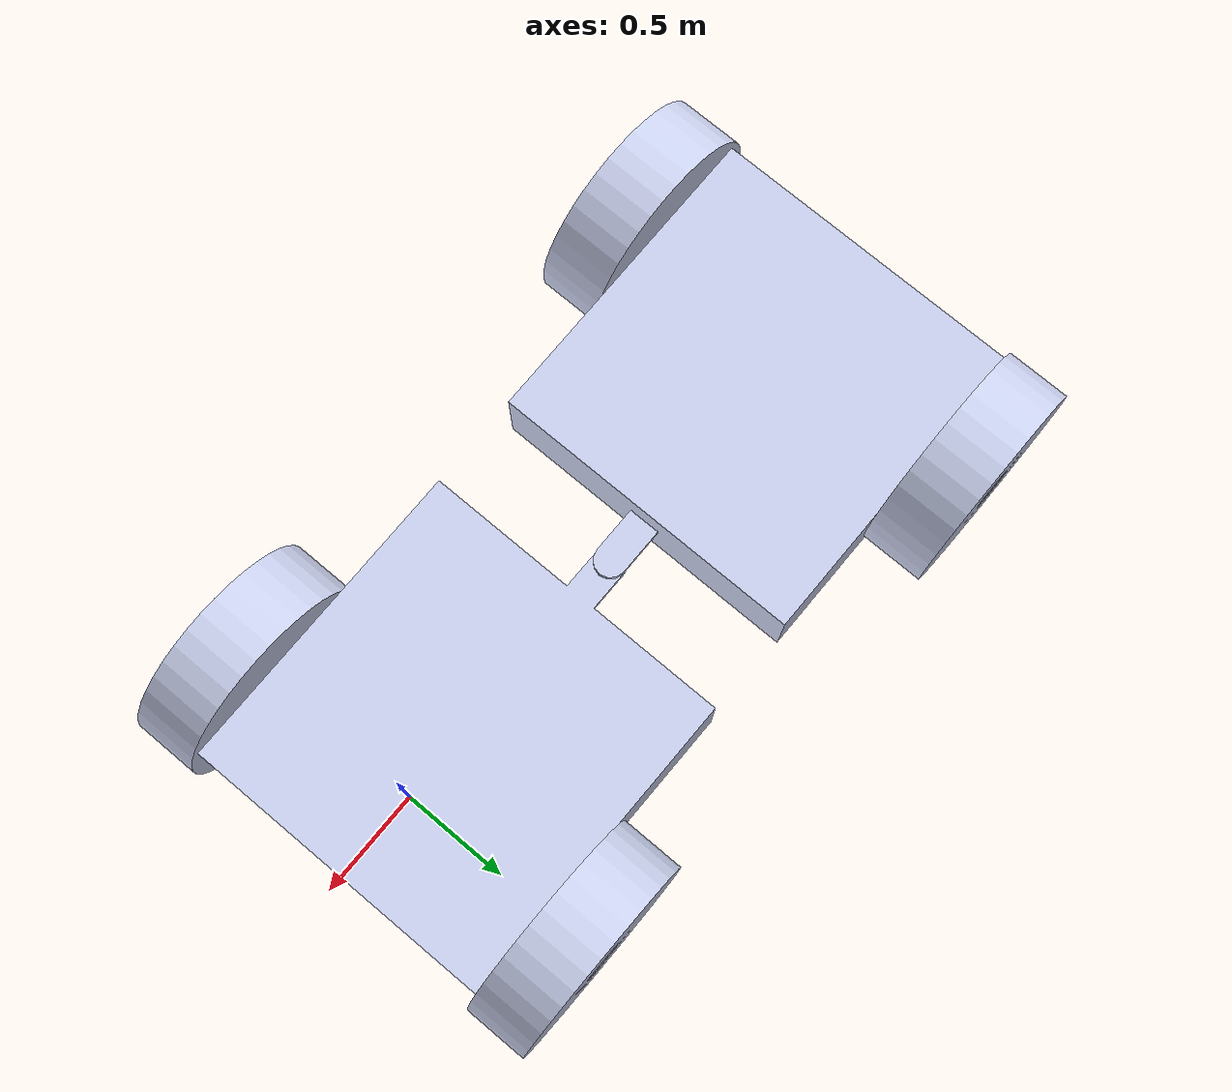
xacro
<?xml version="1.0" encoding="utf-8"?>
<robot
  name="loader" xmlns:xacro="http://ros.org/wiki/xacro">
  <link
    name="base_link">
    <inertial>
      <origin
        xyz="-0.31933 4.4409E-16 6.9389E-18"
        rpy="0 0 0" />
      <mass
        value="919.89" />
      <inertia
        ixx="196.21"
        ixy="4.1078E-15"
        ixz="-1.7091E-15"
        iyy="183.61"
        iyz="6.0184E-15"
        izz="355.72" />
    </inertial>
    <visual>
      <origin
        xyz="0 0 0"
        rpy="0 0 0" />
      <geometry>
        <mesh
          filename="package://loader/meshes/base_link.STL" />
      </geometry>
      <material
        name="">
        <color
          rgba="0.79216 0.81961 0.93333 1" />
      </material>
    </visual>
    <collision>
      <origin
        xyz="0 0 0"
        rpy="0 0 0" />
      <geometry>
        <mesh
          filename="package://loader/meshes/base_link.STL" />
      </geometry>
    </collision>
  </link>
  <link
    name="lf_Link">
    <inertial>
      <origin
        xyz="0 3.4694E-18 -0.15004"
        rpy="0 0 0" />
      <mass
        value="226.14" />
      <inertia
        ixx="16.397"
        ixy="6.6731E-16"
        ixz="6.5919E-17"
        iyy="16.397"
        iyz="-1.4686E-16"
        izz="29.404" />
    </inertial>
    <visual>
      <origin
        xyz="0 0 0"
        rpy="0 0 0" />
      <geometry>
        <mesh
          filename="package://loader/meshes/lf_Link.STL" />
      </geometry>
      <material
        name="">
        <color
          rgba="0.79216 0.81961 0.93333 1" />
      </material>
    </visual>
    <collision>
      <origin
        xyz="0 0 0"
        rpy="0 0 0" />
      <geometry>
        <mesh
          filename="package://loader/meshes/lf_Link.STL" />
      </geometry>
    </collision>
  </link>
  <joint
    name="lf_joint"
    type="continuous">
    <origin
      xyz="0 1.05 0"
      rpy="1.5708 0 -3.1416" />
    <parent
      link="base_link" />
    <child
      link="lf_Link" />
    <axis
      xyz="0 0 1" />
    <limit effort="1000000000" velocity="10000" />
  </joint>
  <link
    name="rf_Link">
    <inertial>
      <origin
        xyz="0 4.4409E-16 0.15004"
        rpy="0 0 0" />
      <mass
        value="226.14" />
      <inertia
        ixx="16.397"
        ixy="-1.525E-15"
        ixz="-5.5945E-16"
        iyy="16.397"
        iyz="-8.3267E-17"
        izz="29.404" />
    </inertial>
    <visual>
      <origin
        xyz="0 0 0"
        rpy="0 0 0" />
      <geometry>
        <mesh
          filename="package://loader/meshes/rf_Link.STL" />
      </geometry>
      <material
        name="">
        <color
          rgba="0.79216 0.81961 0.93333 1" />
      </material>
    </visual>
    <collision>
      <origin
        xyz="0 0 0"
        rpy="0 0 0" />
      <geometry>
        <mesh
          filename="package://loader/meshes/rf_Link.STL" />
      </geometry>
    </collision>
  </link>
  <joint
    name="rf_joint"
    type="continuous">
    <origin
      xyz="0 -1.05 0"
      rpy="-1.5708 1.2309 0" />
    <parent
      link="base_link" />
    <child
      link="rf_Link" />
    <axis
      xyz="0 0 1" />
    <limit effort="1000000000" velocity="10000" />
  </joint>
  <link
    name="back_Link">
    <inertial>
      <origin
        xyz="-0.98017 0 -0.044958"
        rpy="0 0 0" />
      <mass
        value="920.36" />
      <inertia
        ixx="196.21"
        ixy="6.8774E-16"
        ixz="-0.034403"
        iyy="184.06"
        iyz="2.2927E-15"
        izz="356.18" />
    </inertial>
    <visual>
      <origin
        xyz="0 0 0"
        rpy="0 0 0" />
      <geometry>
        <mesh
          filename="package://loader/meshes/back_Link.STL" />
      </geometry>
      <material
        name="">
        <color
          rgba="0.79216 0.81961 0.93333 1" />
      </material>
    </visual>
    <collision>
      <origin
        xyz="0 0 0"
        rpy="0 0 0" />
      <geometry>
        <mesh
          filename="package://loader/meshes/back_Link.STL" />
      </geometry>
    </collision>
  </link>
  <joint
    name="back_joint"
    type="revolute">
    <origin
      xyz="-1.3 0 0.045"
      rpy="0 0 0.0027246" />
    <parent
      link="base_link" />
    <child
      link="back_Link" />
    <axis
      xyz="0 0 1" />
    <limit
      lower="-0.6"
      upper="0.6"
      effort="1000000000"
      velocity="5" />
  </joint>
  <link
    name="lb_Link">
    <inertial>
      <origin
        xyz="0 -2.7756E-17 -0.15004"
        rpy="0 0 0" />
      <mass
        value="226.14" />
      <inertia
        ixx="16.397"
        ixy="0"
        ixz="-6.3767E-17"
        iyy="16.397"
        iyz="1.6111E-16"
        izz="29.404" />
    </inertial>
    <visual>
      <origin
        xyz="0 0 0"
        rpy="0 0 0" />
      <geometry>
        <mesh
          filename="package://loader/meshes/lb_Link.STL" />
      </geometry>
      <material
        name="">
        <color
          rgba="0.79216 0.81961 0.93333 1" />
      </material>
    </visual>
    <collision>
      <origin
        xyz="0 0 0"
        rpy="0 0 0" />
      <geometry>
        <mesh
          filename="package://loader/meshes/lb_Link.STL" />
      </geometry>
    </collision>
  </link>
  <joint
    name="lb_joint"
    type="continuous">
    <origin
      xyz="-1.3 1.05 -0.045"
      rpy="1.5708 0.71272 -3.1416" />
    <parent
      link="back_Link" />
    <child
      link="lb_Link" />
    <axis
      xyz="0 0 1" />
    <limit effort="1000000000" velocity="10000" />
  </joint>
  <link
    name="rb_Link">
    <inertial>
      <origin
        xyz="5.5511E-17 -4.1633E-17 0.15004"
        rpy="0 0 0" />
      <mass
        value="226.14" />
      <inertia
        ixx="16.397"
        ixy="1.3323E-15"
        ixz="3.8723E-17"
        iyy="16.397"
        iyz="-3.7825E-17"
        izz="29.404" />
    </inertial>
    <visual>
      <origin
        xyz="0 0 0"
        rpy="0 0 0" />
      <geometry>
        <mesh
          filename="package://loader/meshes/rb_Link.STL" />
      </geometry>
      <material
        name="">
        <color
          rgba="0.79216 0.81961 0.93333 1" />
      </material>
    </visual>
    <collision>
      <origin
        xyz="0 0 0"
        rpy="0 0 0" />
      <geometry>
        <mesh
          filename="package://loader/meshes/rb_Link.STL" />
      </geometry>
    </collision>
  </link>
  <joint
    name="rb_joint"
    type="continuous">
    <origin
      xyz="-1.3 -1.05 -0.045"
      rpy="1.5708 -0.35746 3.1416" />
    <parent
      link="back_Link" />
    <child
      link="rb_Link" />
    <axis
      xyz="0 0 1" />
    <limit effort="1000000000" velocity="10000" />
  </joint>

    <!-- motors and transmissions for wheels -->
  <transmission name="tran1">
    <type>transmission_interface/SimpleTransmission</type>
    <joint name="lf_joint">
      <hardwareInterface>hardware_interface/VelocityJointInterface</hardwareInterface>
    </joint>
    <actuator name="motor1">
      <hardwareInterface>hardware_interface/VelocityJointInterface</hardwareInterface>
      <mechanicalReduction>1</mechanicalReduction>
    </actuator>
  </transmission>

  <transmission name="tran2">
    <type>transmission_interface/SimpleTransmission</type>
    <joint name="rf_joint">
      <hardwareInterface>hardware_interface/VelocityJointInterface</hardwareInterface>
    </joint>
    <actuator name="motor2">
      <hardwareInterface>hardware_interface/VelocityJointInterface</hardwareInterface>
      <mechanicalReduction>1</mechanicalReduction>
    </actuator>
  </transmission>

    <transmission name="tran3">
    <type>transmission_interface/SimpleTransmission</type>
    <joint name="lb_joint">
      <hardwareInterface>hardware_interface/VelocityJointInterface</hardwareInterface>
    </joint>
    <actuator name="motor3">
      <hardwareInterface>hardware_interface/VelocityJointInterface</hardwareInterface>
      <mechanicalReduction>1</mechanicalReduction>
    </actuator>
  </transmission>

  <transmission name="tran4">
    <type>transmission_interface/SimpleTransmission</type>
    <joint name="rb_joint">
      <hardwareInterface>hardware_interface/VelocityJointInterface</hardwareInterface>
    </joint>
    <actuator name="motor4">
      <hardwareInterface>hardware_interface/VelocityJointInterface</hardwareInterface>
      <mechanicalReduction>1</mechanicalReduction>
    </actuator>
  </transmission>

  <!-- EPS and transmissions for the steering -->
  <transmission name="tran5">
    <type>transmission_interface/SimpleTransmission</type>
    <joint name="back_joint">
      <hardwareInterface>hardware_interface/EffortJointInterface</hardwareInterface>
    </joint>
    <actuator name="motor5">
      <hardwareInterface>hardware_interface/EffortJointInterface</hardwareInterface>
      <mechanicalReduction>1</mechanicalReduction>
      <motorTorqueConstant>1000000</motorTorqueConstant>
    </actuator>
  </transmission>

  <!-- Friction Parametres -->
  <gazebo reference="lf_Link">
    <mu1>10000000</mu1>
    <mu2>10000000</mu2>
    <kp>10000000</kp>
    <kd>1</kd>
  </gazebo>

  <gazebo reference="rf_Link">
    <mu1>10000000</mu1>
    <mu2>10000000</mu2>
    <kp>10000000</kp>
    <kd>1</kd>
  </gazebo>

  <gazebo reference="lb_Link">
    <mu1>10000000</mu1>
    <mu2>10000000</mu2>
    <kp>10000000</kp>
    <kd>1</kd>
  </gazebo>

  <gazebo reference="rb_Link">
    <mu1>10000000</mu1>
    <mu2>10000000</mu2>
    <kp>10000000</kp>
    <kd>1</kd>
  </gazebo>

  <!-- Gazebo Plugins -->
  <gazebo>
    <plugin name="gazebo_ros_control" filename="libgazebo_ros_control.so">
      <robotNamespace>/loader</robotNamespace>
      <robotParam>robot_description</robotParam>
      <robotSimType>gazebo_ros_control/DefaultRobotHWSim</robotSimType>
    </plugin>
  </gazebo>

  <gazebo>
    <plugin name="joint_state_publisher" filename="libgazebo_ros_joint_state_publisher.so">
      <jointName>lf_joint, rf_joint, lb_joint,rb_joint, back_joint</jointName>
      <updateRate>50.0</updateRate>
      <robotNamespace>/loader</robotNamespace>
      <alwaysOn>true</alwaysOn>
    </plugin>
  </gazebo>
</robot>
